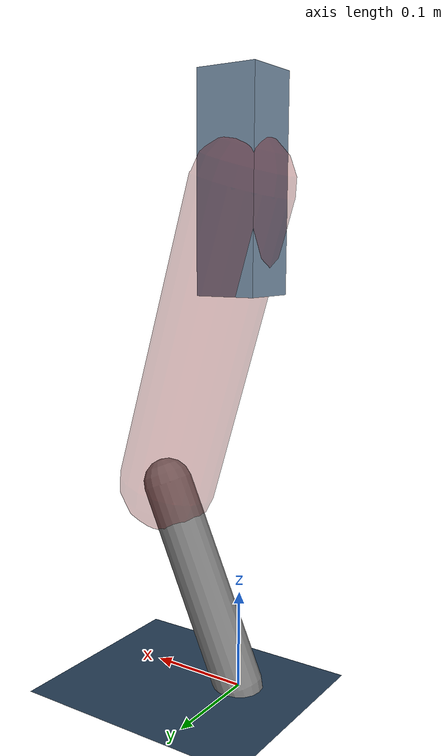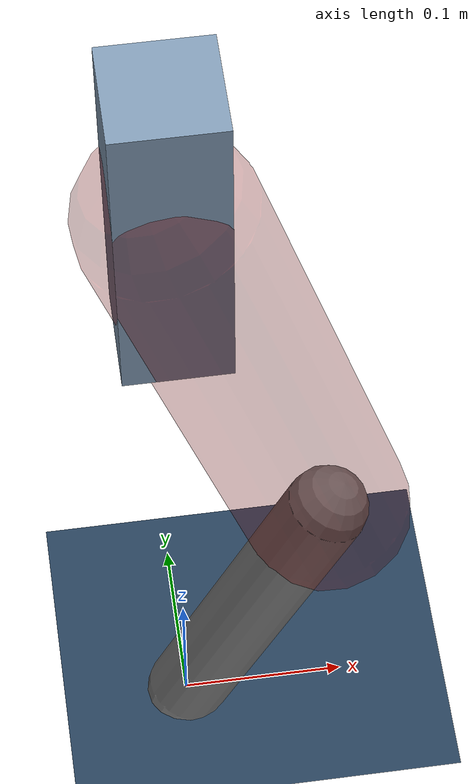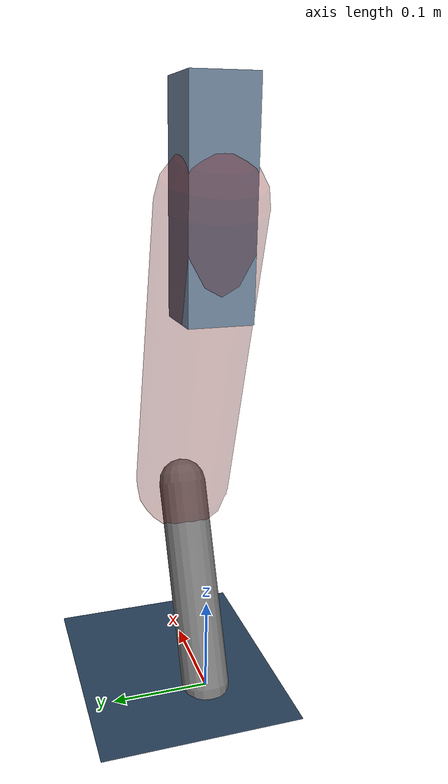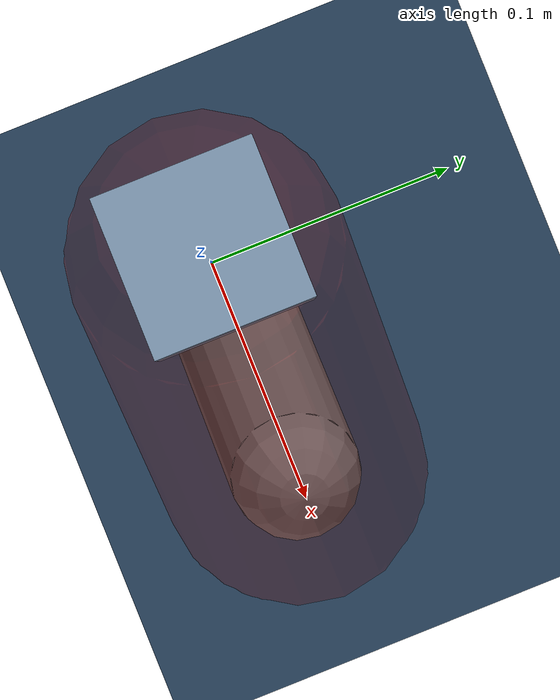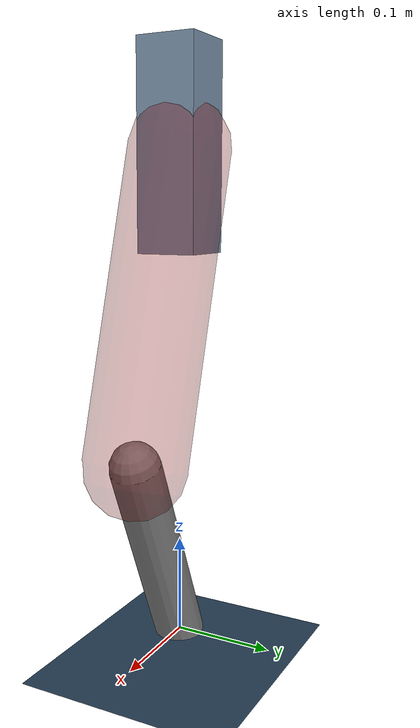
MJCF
<mujoco model="Hopper2D">
	<compiler inertiafromgeom="true" angle="radian" />
	<option timestep="0.001" integrator="implicit" cone="elliptic" solver="Newton" tolerance="1e-10" />

	<default>
		<geom contype="1" conaffinity="1" condim="3" friction="2 0.005 0.0001" solref="0.005 1" />
		<joint limited="true" damping="0.1" />
	</default>

	<asset>
		<texture name="skybox" type="skybox" builtin="gradient" rgb1=".4 .6 .8" rgb2="0 0 0" width="800" height="800" />
		<texture name="grid" type="2d" builtin="checker" rgb1=".1 .2 .3" rgb2=".2 .3 .4" width="300" height="300" mark="edge" markrgb=".2 .3 .4" />
		<material name="ground" texture="grid" texrepeat="1 1" texuniform="true" reflectance="0.1" />
		<material name="leg" rgba="0.5 0.6 0.7 1" />
	</asset>

	<worldbody>

		<geom name="floor" type="plane" size="5 5 0.25" material="ground" />

		<light directional="false" diffuse="0.8 0.8 0.8" specular="0.3 0.3 0.3" pos="0 0 2" dir="0 0 -1" />
		<light mode="targetbodycom" target="base" directional="false" diffuse="0.8 0.8 0.8" specular="0.3 0.3 0.3" pos="0 0 2" dir="0 0 -1" />

		<camera name="fixed" pos="0 -2 1" xyaxes="1 0 0 0 0 1" />
		<camera name="tracking" mode="trackcom" pos="0 -3 1" />

		<body name="root" pos="0 0 0.4943296487193948">
			<joint name="slide_x" type="slide" axis="1 0 0" range="-100 100" />
			<joint name="slide_z" type="slide" axis="0 0 1" range="0 10" />

			<body name="base" pos="0 0 0">
				<geom name="torso" type="box" size="0.03 0.03 0.1" mass="3.942" material="leg" />

				<body name="link1" pos="0 0 0" euler="0 1.281291305712734 0">
					<joint type="hinge" axis="0 -1 0" pos="0 0 0" name="hinge1" limited="true" range="-3.14 3.14" stiffness="0" damping="0.1" />
					<geom name="thigh" type="capsule" fromto="0 0 0 0.30700485718432036 0 0" size="0.05" rgba="0.5 0 0 0.3" mass="1.007713114397665" />

					<body name="link2" pos="0.30700485718432036 0 0" euler="0 0.7023308058157957 0">
						<joint type="hinge" axis="0 -1 0" pos="0 0 0" name="hinge2" limited="true" range="-3.14 3.14" stiffness="0" damping="0.1" />
						<geom name="shank" type="capsule" fromto="0 0 0 0.21845275272746456 0 0" size="0.025" mass="0.4163622021819716" />

					</body>
				</body>
			</body>
		</body>
	</worldbody>

	<actuator>
		<motor name="torque1" joint="hinge1" ctrlrange="-183.7602745161925 183.7602745161925" ctrllimited="true" gear="1" />
		<motor name="torque2" joint="hinge2" ctrlrange="-159.1957666989605 159.1957666989605" ctrllimited="true" gear="1" />
	</actuator>
</mujoco>
